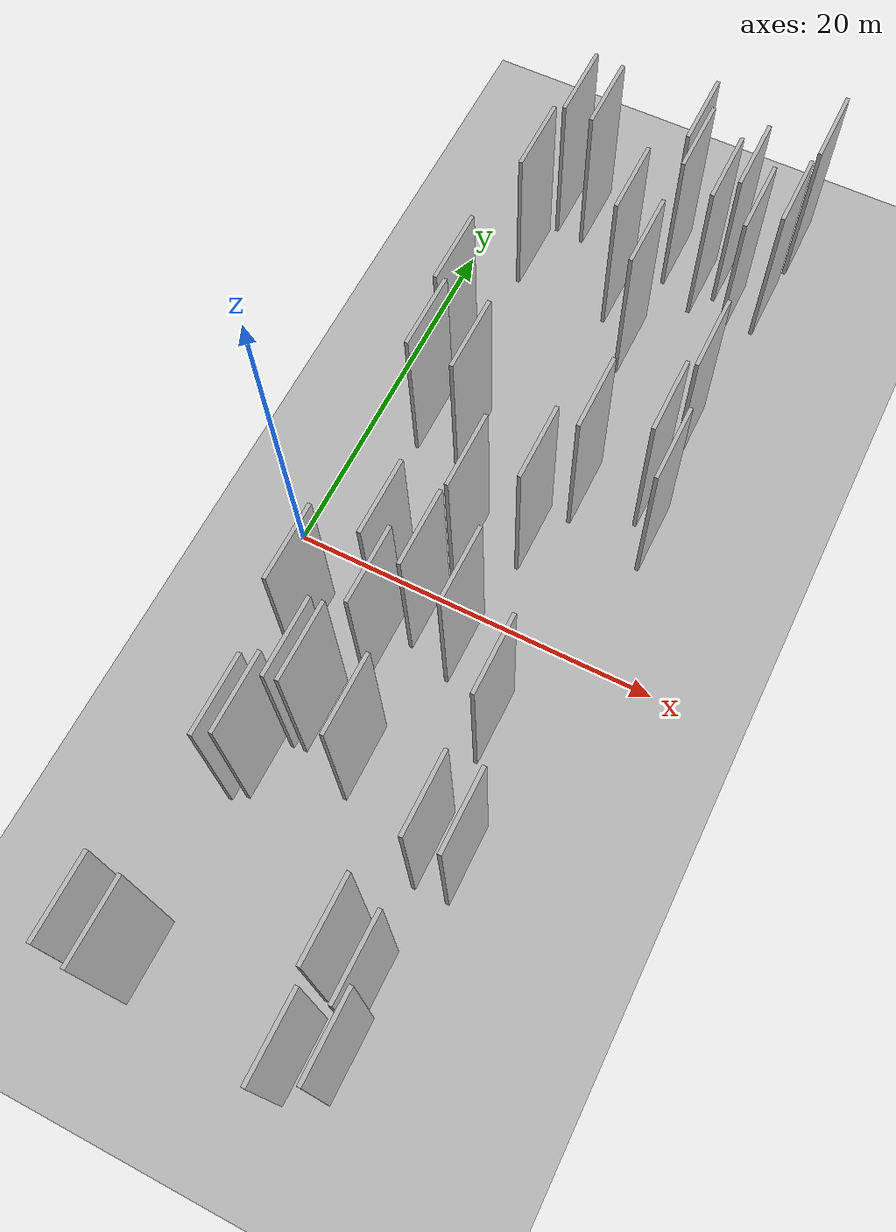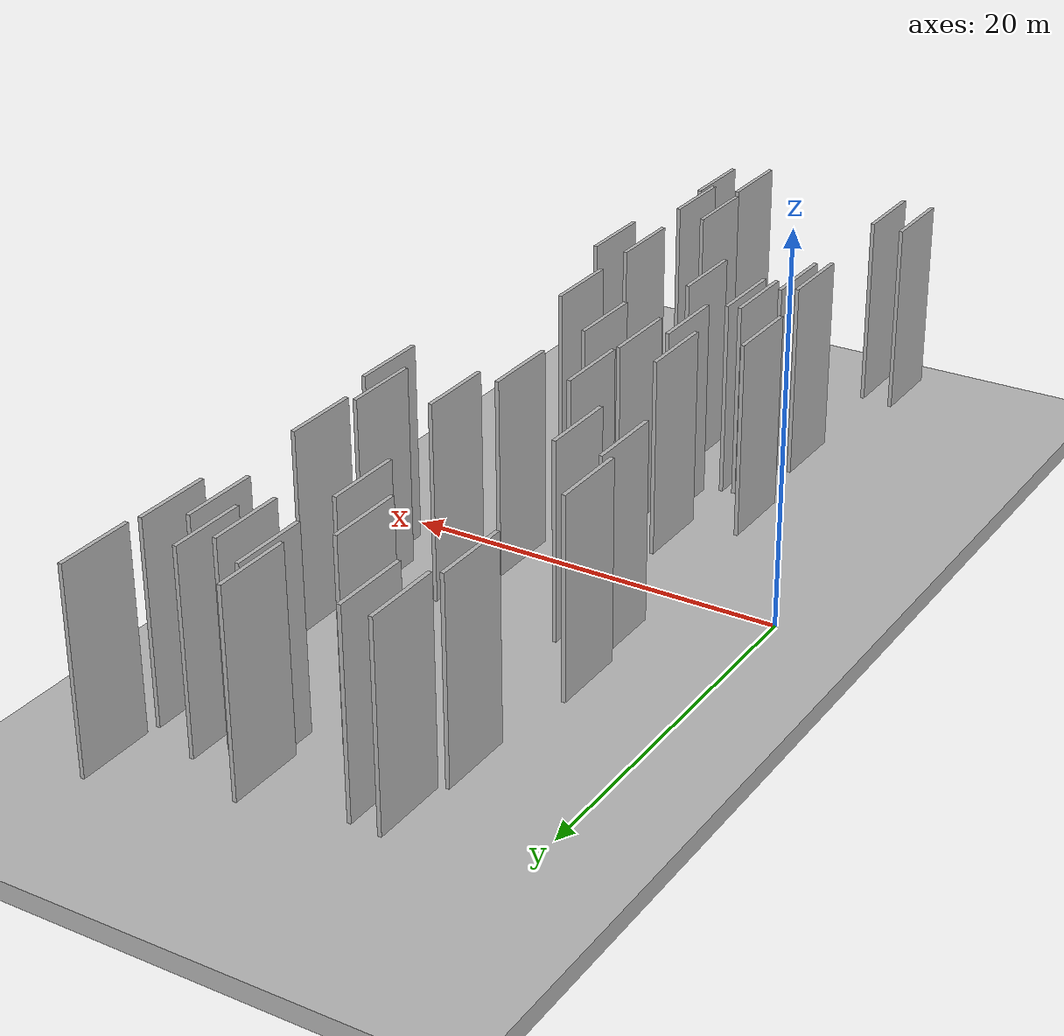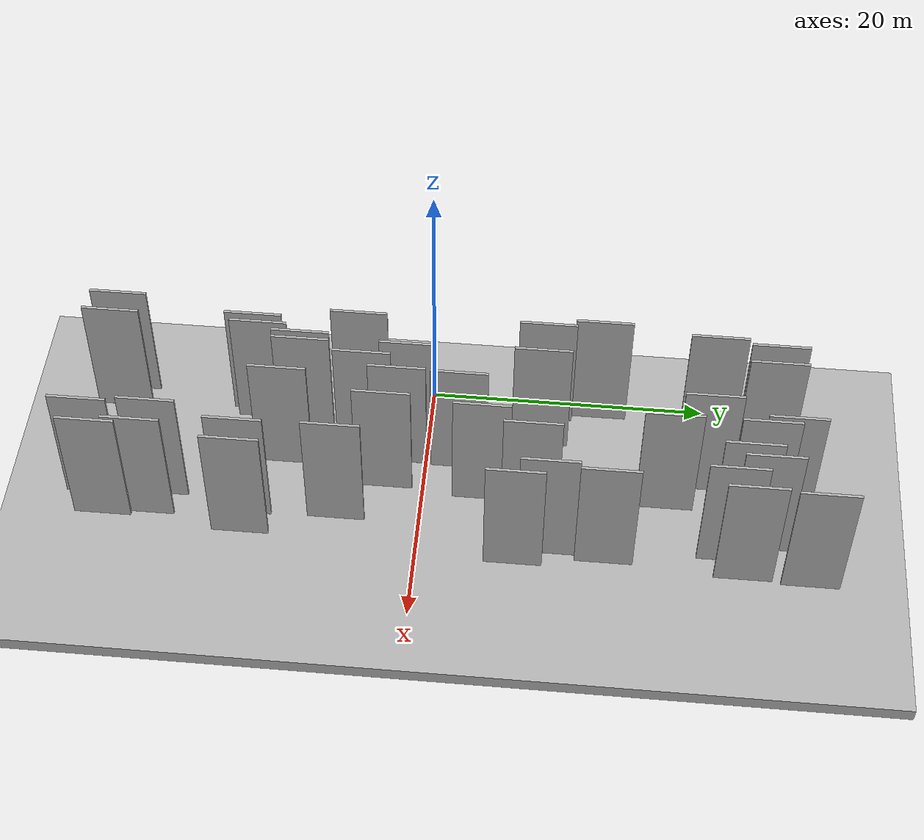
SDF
<?xml version="1.0" encoding="utf-8"?>

<sdf version="1.6">

   <world name="default">

      <gui fullscreen="0">

         <camera name="user_camera">

            <pose>-15 0 4.57585 0 0 0</pose>

            <view_controller>orbit</view_controller>

         </camera>

      </gui>

      <scene>

         <sky>

           <clouds>

             <speed>12</speed>

           </clouds>

         </sky>

         <ambient>0.4 0.4 0.4 1</ambient>

         <background>0.7 0.7 0.7 1</background>

         <shadows>1</shadows>

      </scene>

      <gravity>0 0 -9.8066</gravity>

      <magnetic_field>6e-06 2.3e-05 -4.2e-05</magnetic_field>

      <physics default="0" name="default_physics" type="ode">

         <ode>

            <solver>

               <type>quick</type>

               <iters>10</iters>

               <sor>1.0</sor>

               <use_dynamic_moi_rescaling>0</use_dynamic_moi_rescaling>

            </solver>

            <constraints>

               <cfm>0</cfm>

               <erp>0.2</erp>

               <contact_max_correcting_vel>100</contact_max_correcting_vel>

               <contact_surface_layer>0.001</contact_surface_layer>

            </constraints>

         </ode>

         <max_step_size>0.004</max_step_size>

         <real_time_factor>1</real_time_factor>

         <real_time_update_rate>250</real_time_update_rate>

      </physics>

      <light name="sun" type="directional">

         <cast_shadows>1</cast_shadows>

         <pose>0 0 10 0 0 0</pose>

         <diffuse>0.8 0.8 0.8 1</diffuse>

         <specular>0.2 0.2 0.2 1</specular>

         <attenuation>

            <range>1000</range>

            <constant>0.9</constant>

            <linear>0.01</linear>

            <quadratic>0.001</quadratic>

         </attenuation>

         <direction>-0.5 0.1 -0.9</direction>

      </light>

      <include>

         <name>ground_plane_1</name>

         <uri>model://HANNAS_ground_plane</uri>

         <pose>0 0 0  0 0 0</pose>

      </include>

      <include>

         <name>ground_plane_2</name>

         <uri>model://HANNAS_ground_plane</uri>

         <pose>100 0 0  0 0 0</pose>

      </include>

      <model name="HANNAS_wall_1">

         <static>1</static>

         <pose frame="">5.0184 -22.1735 2.5 0.000000 0.000000 1.570796</pose>

         <link name="link">

            <pose frame="">0 0 5.00 0 0 0</pose>

            <collision name="collision">

               <geometry>

                  <box>

                     <size>4.00 0.2 10.00</size>

                  </box>

               </geometry>

               <max_contacts>10</max_contacts>

               <surface>

                  <contact>

                     <ode/>

                  </contact>

                  <bounce/>

                  <friction>

                     <torsional>

                        <ode/>

                     </torsional>

                     <ode/>

                  </friction>

               </surface>

            </collision>

            <visual name="visual">

               <cast_shadows>0</cast_shadows>

               <geometry>

                  <box>

                     <size>4.00 0.2 10.00</size>

                  </box>

               </geometry>

               <material>

                  <script>

                     <uri>model://HANNAS_wall/materials/scripts</uri>

                     <uri>model://HANNAS_wall/materials/textures</uri>

                     <name>vrc/HANNAS_wall</name>

                  </script>

               </material>

            </visual>

            <self_collide>0</self_collide>

            <enable_wind>0</enable_wind>

            <kinematic>0</kinematic>

         </link>

      </model>

      <model name="HANNAS_wall_2">

         <static>1</static>

         <pose frame="">16.1555 13.1335 2.5 0.000000 0.000000 1.570796</pose>

         <link name="link">

            <pose frame="">0 0 5.00 0 0 0</pose>

            <collision name="collision">

               <geometry>

                  <box>

                     <size>4.00 0.2 10.00</size>

                  </box>

               </geometry>

               <max_contacts>10</max_contacts>

               <surface>

                  <contact>

                     <ode/>

                  </contact>

                  <bounce/>

                  <friction>

                     <torsional>

                        <ode/>

                     </torsional>

                     <ode/>

                  </friction>

               </surface>

            </collision>

            <visual name="visual">

               <cast_shadows>0</cast_shadows>

               <geometry>

                  <box>

                     <size>4.00 0.2 10.00</size>

                  </box>

               </geometry>

               <material>

                  <script>

                     <uri>model://HANNAS_wall/materials/scripts</uri>

                     <uri>model://HANNAS_wall/materials/textures</uri>

                     <name>vrc/HANNAS_wall</name>

                  </script>

               </material>

            </visual>

            <self_collide>0</self_collide>

            <enable_wind>0</enable_wind>

            <kinematic>0</kinematic>

         </link>

      </model>

      <model name="HANNAS_wall_3">

         <static>1</static>

         <pose frame="">3.3256 -21.9479 2.5 0.000000 0.000000 1.570796</pose>

         <link name="link">

            <pose frame="">0 0 5.00 0 0 0</pose>

            <collision name="collision">

               <geometry>

                  <box>

                     <size>4.00 0.2 10.00</size>

                  </box>

               </geometry>

               <max_contacts>10</max_contacts>

               <surface>

                  <contact>

                     <ode/>

                  </contact>

                  <bounce/>

                  <friction>

                     <torsional>

                        <ode/>

                     </torsional>

                     <ode/>

                  </friction>

               </surface>

            </collision>

            <visual name="visual">

               <cast_shadows>0</cast_shadows>

               <geometry>

                  <box>

                     <size>4.00 0.2 10.00</size>

                  </box>

               </geometry>

               <material>

                  <script>

                     <uri>model://HANNAS_wall/materials/scripts</uri>

                     <uri>model://HANNAS_wall/materials/textures</uri>

                     <name>vrc/HANNAS_wall</name>

                  </script>

               </material>

            </visual>

            <self_collide>0</self_collide>

            <enable_wind>0</enable_wind>

            <kinematic>0</kinematic>

         </link>

      </model>

      <model name="HANNAS_wall_4">

         <static>1</static>

         <pose frame="">4.5028 -12.2182 2.5 0.000000 0.000000 1.570796</pose>

         <link name="link">

            <pose frame="">0 0 5.00 0 0 0</pose>

            <collision name="collision">

               <geometry>

                  <box>

                     <size>4.00 0.2 10.00</size>

                  </box>

               </geometry>

               <max_contacts>10</max_contacts>

               <surface>

                  <contact>

                     <ode/>

                  </contact>

                  <bounce/>

                  <friction>

                     <torsional>

                        <ode/>

                     </torsional>

                     <ode/>

                  </friction>

               </surface>

            </collision>

            <visual name="visual">

               <cast_shadows>0</cast_shadows>

               <geometry>

                  <box>

                     <size>4.00 0.2 10.00</size>

                  </box>

               </geometry>

               <material>

                  <script>

                     <uri>model://HANNAS_wall/materials/scripts</uri>

                     <uri>model://HANNAS_wall/materials/textures</uri>

                     <name>vrc/HANNAS_wall</name>

                  </script>

               </material>

            </visual>

            <self_collide>0</self_collide>

            <enable_wind>0</enable_wind>

            <kinematic>0</kinematic>

         </link>

      </model>

      <model name="HANNAS_wall_5">

         <static>1</static>

         <pose frame="">15.0789 -21.8537 2.5 0.000000 0.000000 1.570796</pose>

         <link name="link">

            <pose frame="">0 0 5.00 0 0 0</pose>

            <collision name="collision">

               <geometry>

                  <box>

                     <size>4.00 0.2 10.00</size>

                  </box>

               </geometry>

               <max_contacts>10</max_contacts>

               <surface>

                  <contact>

                     <ode/>

                  </contact>

                  <bounce/>

                  <friction>

                     <torsional>

                        <ode/>

                     </torsional>

                     <ode/>

                  </friction>

               </surface>

            </collision>

            <visual name="visual">

               <cast_shadows>0</cast_shadows>

               <geometry>

                  <box>

                     <size>4.00 0.2 10.00</size>

                  </box>

               </geometry>

               <material>

                  <script>

                     <uri>model://HANNAS_wall/materials/scripts</uri>

                     <uri>model://HANNAS_wall/materials/textures</uri>

                     <name>vrc/HANNAS_wall</name>

                  </script>

               </material>

            </visual>

            <self_collide>0</self_collide>

            <enable_wind>0</enable_wind>

            <kinematic>0</kinematic>

         </link>

      </model>

      <model name="HANNAS_wall_6">

         <static>1</static>

         <pose frame="">11.0372 23.6294 2.5 0.000000 0.000000 1.570796</pose>

         <link name="link">

            <pose frame="">0 0 5.00 0 0 0</pose>

            <collision name="collision">

               <geometry>

                  <box>

                     <size>4.00 0.2 10.00</size>

                  </box>

               </geometry>

               <max_contacts>10</max_contacts>

               <surface>

                  <contact>

                     <ode/>

                  </contact>

                  <bounce/>

                  <friction>

                     <torsional>

                        <ode/>

                     </torsional>

                     <ode/>

                  </friction>

               </surface>

            </collision>

            <visual name="visual">

               <cast_shadows>0</cast_shadows>

               <geometry>

                  <box>

                     <size>4.00 0.2 10.00</size>

                  </box>

               </geometry>

               <material>

                  <script>

                     <uri>model://HANNAS_wall/materials/scripts</uri>

                     <uri>model://HANNAS_wall/materials/textures</uri>

                     <name>vrc/HANNAS_wall</name>

                  </script>

               </material>

            </visual>

            <self_collide>0</self_collide>

            <enable_wind>0</enable_wind>

            <kinematic>0</kinematic>

         </link>

      </model>

      <model name="HANNAS_wall_7">

         <static>1</static>

         <pose frame="">16.6972 22.6465 2.5 0.000000 0.000000 1.570796</pose>

         <link name="link">

            <pose frame="">0 0 5.00 0 0 0</pose>

            <collision name="collision">

               <geometry>

                  <box>

                     <size>4.00 0.2 10.00</size>

                  </box>

               </geometry>

               <max_contacts>10</max_contacts>

               <surface>

                  <contact>

                     <ode/>

                  </contact>

                  <bounce/>

                  <friction>

                     <torsional>

                        <ode/>

                     </torsional>

                     <ode/>

                  </friction>

               </surface>

            </collision>

            <visual name="visual">

               <cast_shadows>0</cast_shadows>

               <geometry>

                  <box>

                     <size>4.00 0.2 10.00</size>

                  </box>

               </geometry>

               <material>

                  <script>

                     <uri>model://HANNAS_wall/materials/scripts</uri>

                     <uri>model://HANNAS_wall/materials/textures</uri>

                     <name>vrc/HANNAS_wall</name>

                  </script>

               </material>

            </visual>

            <self_collide>0</self_collide>

            <enable_wind>0</enable_wind>

            <kinematic>0</kinematic>

         </link>

      </model>

      <model name="HANNAS_wall_8">

         <static>1</static>

         <pose frame="">3.7094 -4.9024 2.5 0.000000 0.000000 1.570796</pose>

         <link name="link">

            <pose frame="">0 0 5.00 0 0 0</pose>

            <collision name="collision">

               <geometry>

                  <box>

                     <size>4.00 0.2 10.00</size>

                  </box>

               </geometry>

               <max_contacts>10</max_contacts>

               <surface>

                  <contact>

                     <ode/>

                  </contact>

                  <bounce/>

                  <friction>

                     <torsional>

                        <ode/>

                     </torsional>

                     <ode/>

                  </friction>

               </surface>

            </collision>

            <visual name="visual">

               <cast_shadows>0</cast_shadows>

               <geometry>

                  <box>

                     <size>4.00 0.2 10.00</size>

                  </box>

               </geometry>

               <material>

                  <script>

                     <uri>model://HANNAS_wall/materials/scripts</uri>

                     <uri>model://HANNAS_wall/materials/textures</uri>

                     <name>vrc/HANNAS_wall</name>

                  </script>

               </material>

            </visual>

            <self_collide>0</self_collide>

            <enable_wind>0</enable_wind>

            <kinematic>0</kinematic>

         </link>

      </model>

      <model name="HANNAS_wall_9">

         <static>1</static>

         <pose frame="">7.3631 -4.2993 2.5 0.000000 0.000000 1.570796</pose>

         <link name="link">

            <pose frame="">0 0 5.00 0 0 0</pose>

            <collision name="collision">

               <geometry>

                  <box>

                     <size>4.00 0.2 10.00</size>

                  </box>

               </geometry>

               <max_contacts>10</max_contacts>

               <surface>

                  <contact>

                     <ode/>

                  </contact>

                  <bounce/>

                  <friction>

                     <torsional>

                        <ode/>

                     </torsional>

                     <ode/>

                  </friction>

               </surface>

            </collision>

            <visual name="visual">

               <cast_shadows>0</cast_shadows>

               <geometry>

                  <box>

                     <size>4.00 0.2 10.00</size>

                  </box>

               </geometry>

               <material>

                  <script>

                     <uri>model://HANNAS_wall/materials/scripts</uri>

                     <uri>model://HANNAS_wall/materials/textures</uri>

                     <name>vrc/HANNAS_wall</name>

                  </script>

               </material>

            </visual>

            <self_collide>0</self_collide>

            <enable_wind>0</enable_wind>

            <kinematic>0</kinematic>

         </link>

      </model>

      <model name="HANNAS_wall_10">

         <static>1</static>

         <pose frame="">15.8072 -12.0592 2.5 0.000000 0.000000 1.570796</pose>

         <link name="link">

            <pose frame="">0 0 5.00 0 0 0</pose>

            <collision name="collision">

               <geometry>

                  <box>

                     <size>4.00 0.2 10.00</size>

                  </box>

               </geometry>

               <max_contacts>10</max_contacts>

               <surface>

                  <contact>

                     <ode/>

                  </contact>

                  <bounce/>

                  <friction>

                     <torsional>

                        <ode/>

                     </torsional>

                     <ode/>

                  </friction>

               </surface>

            </collision>

            <visual name="visual">

               <cast_shadows>0</cast_shadows>

               <geometry>

                  <box>

                     <size>4.00 0.2 10.00</size>

                  </box>

               </geometry>

               <material>

                  <script>

                     <uri>model://HANNAS_wall/materials/scripts</uri>

                     <uri>model://HANNAS_wall/materials/textures</uri>

                     <name>vrc/HANNAS_wall</name>

                  </script>

               </material>

            </visual>

            <self_collide>0</self_collide>

            <enable_wind>0</enable_wind>

            <kinematic>0</kinematic>

         </link>

      </model>

      <model name="HANNAS_wall_11">

         <static>1</static>

         <pose frame="">11.0493 17.1665 2.5 0.000000 0.000000 1.570796</pose>

         <link name="link">

            <pose frame="">0 0 5.00 0 0 0</pose>

            <collision name="collision">

               <geometry>

                  <box>

                     <size>4.00 0.2 10.00</size>

                  </box>

               </geometry>

               <max_contacts>10</max_contacts>

               <surface>

                  <contact>

                     <ode/>

                  </contact>

                  <bounce/>

                  <friction>

                     <torsional>

                        <ode/>

                     </torsional>

                     <ode/>

                  </friction>

               </surface>

            </collision>

            <visual name="visual">

               <cast_shadows>0</cast_shadows>

               <geometry>

                  <box>

                     <size>4.00 0.2 10.00</size>

                  </box>

               </geometry>

               <material>

                  <script>

                     <uri>model://HANNAS_wall/materials/scripts</uri>

                     <uri>model://HANNAS_wall/materials/textures</uri>

                     <name>vrc/HANNAS_wall</name>

                  </script>

               </material>

            </visual>

            <self_collide>0</self_collide>

            <enable_wind>0</enable_wind>

            <kinematic>0</kinematic>

         </link>

      </model>

      <model name="HANNAS_wall_12">

         <static>1</static>

         <pose frame="">13.0608 22.4641 2.5 0.000000 0.000000 1.570796</pose>

         <link name="link">

            <pose frame="">0 0 5.00 0 0 0</pose>

            <collision name="collision">

               <geometry>

                  <box>

                     <size>4.00 0.2 10.00</size>

                  </box>

               </geometry>

               <max_contacts>10</max_contacts>

               <surface>

                  <contact>

                     <ode/>

                  </contact>

                  <bounce/>

                  <friction>

                     <torsional>

                        <ode/>

                     </torsional>

                     <ode/>

                  </friction>

               </surface>

            </collision>

            <visual name="visual">

               <cast_shadows>0</cast_shadows>

               <geometry>

                  <box>

                     <size>4.00 0.2 10.00</size>

                  </box>

               </geometry>

               <material>

                  <script>

                     <uri>model://HANNAS_wall/materials/scripts</uri>

                     <uri>model://HANNAS_wall/materials/textures</uri>

                     <name>vrc/HANNAS_wall</name>

                  </script>

               </material>

            </visual>

            <self_collide>0</self_collide>

            <enable_wind>0</enable_wind>

            <kinematic>0</kinematic>

         </link>

      </model>

      <model name="HANNAS_wall_13">

         <static>1</static>

         <pose frame="">3.7755 20.1655 2.5 0.000000 0.000000 1.570796</pose>

         <link name="link">

            <pose frame="">0 0 5.00 0 0 0</pose>

            <collision name="collision">

               <geometry>

                  <box>

                     <size>4.00 0.2 10.00</size>

                  </box>

               </geometry>

               <max_contacts>10</max_contacts>

               <surface>

                  <contact>

                     <ode/>

                  </contact>

                  <bounce/>

                  <friction>

                     <torsional>

                        <ode/>

                     </torsional>

                     <ode/>

                  </friction>

               </surface>

            </collision>

            <visual name="visual">

               <cast_shadows>0</cast_shadows>

               <geometry>

                  <box>

                     <size>4.00 0.2 10.00</size>

                  </box>

               </geometry>

               <material>

                  <script>

                     <uri>model://HANNAS_wall/materials/scripts</uri>

                     <uri>model://HANNAS_wall/materials/textures</uri>

                     <name>vrc/HANNAS_wall</name>

                  </script>

               </material>

            </visual>

            <self_collide>0</self_collide>

            <enable_wind>0</enable_wind>

            <kinematic>0</kinematic>

         </link>

      </model>

      <model name="HANNAS_wall_14">

         <static>1</static>

         <pose frame="">3.1086 12.2018 2.5 0.000000 0.000000 1.570796</pose>

         <link name="link">

            <pose frame="">0 0 5.00 0 0 0</pose>

            <collision name="collision">

               <geometry>

                  <box>

                     <size>4.00 0.2 10.00</size>

                  </box>

               </geometry>

               <max_contacts>10</max_contacts>

               <surface>

                  <contact>

                     <ode/>

                  </contact>

                  <bounce/>

                  <friction>

                     <torsional>

                        <ode/>

                     </torsional>

                     <ode/>

                  </friction>

               </surface>

            </collision>

            <visual name="visual">

               <cast_shadows>0</cast_shadows>

               <geometry>

                  <box>

                     <size>4.00 0.2 10.00</size>

                  </box>

               </geometry>

               <material>

                  <script>

                     <uri>model://HANNAS_wall/materials/scripts</uri>

                     <uri>model://HANNAS_wall/materials/textures</uri>

                     <name>vrc/HANNAS_wall</name>

                  </script>

               </material>

            </visual>

            <self_collide>0</self_collide>

            <enable_wind>0</enable_wind>

            <kinematic>0</kinematic>

         </link>

      </model>

      <model name="HANNAS_wall_15">

         <static>1</static>

         <pose frame="">12.9526 -18.1699 2.5 0.000000 0.000000 1.570796</pose>

         <link name="link">

            <pose frame="">0 0 5.00 0 0 0</pose>

            <collision name="collision">

               <geometry>

                  <box>

                     <size>4.00 0.2 10.00</size>

                  </box>

               </geometry>

               <max_contacts>10</max_contacts>

               <surface>

                  <contact>

                     <ode/>

                  </contact>

                  <bounce/>

                  <friction>

                     <torsional>

                        <ode/>

                     </torsional>

                     <ode/>

                  </friction>

               </surface>

            </collision>

            <visual name="visual">

               <cast_shadows>0</cast_shadows>

               <geometry>

                  <box>

                     <size>4.00 0.2 10.00</size>

                  </box>

               </geometry>

               <material>

                  <script>

                     <uri>model://HANNAS_wall/materials/scripts</uri>

                     <uri>model://HANNAS_wall/materials/textures</uri>

                     <name>vrc/HANNAS_wall</name>

                  </script>

               </material>

            </visual>

            <self_collide>0</self_collide>

            <enable_wind>0</enable_wind>

            <kinematic>0</kinematic>

         </link>

      </model>

      <model name="HANNAS_wall_16">

         <static>1</static>

         <pose frame="">12.6048 7.8343 2.5 0.000000 0.000000 1.570796</pose>

         <link name="link">

            <pose frame="">0 0 5.00 0 0 0</pose>

            <collision name="collision">

               <geometry>

                  <box>

                     <size>4.00 0.2 10.00</size>

                  </box>

               </geometry>

               <max_contacts>10</max_contacts>

               <surface>

                  <contact>

                     <ode/>

                  </contact>

                  <bounce/>

                  <friction>

                     <torsional>

                        <ode/>

                     </torsional>

                     <ode/>

                  </friction>

               </surface>

            </collision>

            <visual name="visual">

               <cast_shadows>0</cast_shadows>

               <geometry>

                  <box>

                     <size>4.00 0.2 10.00</size>

                  </box>

               </geometry>

               <material>

                  <script>

                     <uri>model://HANNAS_wall/materials/scripts</uri>

                     <uri>model://HANNAS_wall/materials/textures</uri>

                     <name>vrc/HANNAS_wall</name>

                  </script>

               </material>

            </visual>

            <self_collide>0</self_collide>

            <enable_wind>0</enable_wind>

            <kinematic>0</kinematic>

         </link>

      </model>

      <model name="HANNAS_wall_17">

         <static>1</static>

         <pose frame="">5.2063 -11.7776 2.5 0.000000 0.000000 1.570796</pose>

         <link name="link">

            <pose frame="">0 0 5.00 0 0 0</pose>

            <collision name="collision">

               <geometry>

                  <box>

                     <size>4.00 0.2 10.00</size>

                  </box>

               </geometry>

               <max_contacts>10</max_contacts>

               <surface>

                  <contact>

                     <ode/>

                  </contact>

                  <bounce/>

                  <friction>

                     <torsional>

                        <ode/>

                     </torsional>

                     <ode/>

                  </friction>

               </surface>

            </collision>

            <visual name="visual">

               <cast_shadows>0</cast_shadows>

               <geometry>

                  <box>

                     <size>4.00 0.2 10.00</size>

                  </box>

               </geometry>

               <material>

                  <script>

                     <uri>model://HANNAS_wall/materials/scripts</uri>

                     <uri>model://HANNAS_wall/materials/textures</uri>

                     <name>vrc/HANNAS_wall</name>

                  </script>

               </material>

            </visual>

            <self_collide>0</self_collide>

            <enable_wind>0</enable_wind>

            <kinematic>0</kinematic>

         </link>

      </model>

      <model name="HANNAS_wall_18">

         <static>1</static>

         <pose frame="">5.7793 24.1815 2.5 0.000000 0.000000 1.570796</pose>

         <link name="link">

            <pose frame="">0 0 5.00 0 0 0</pose>

            <collision name="collision">

               <geometry>

                  <box>

                     <size>4.00 0.2 10.00</size>

                  </box>

               </geometry>

               <max_contacts>10</max_contacts>

               <surface>

                  <contact>

                     <ode/>

                  </contact>

                  <bounce/>

                  <friction>

                     <torsional>

                        <ode/>

                     </torsional>

                     <ode/>

                  </friction>

               </surface>

            </collision>

            <visual name="visual">

               <cast_shadows>0</cast_shadows>

               <geometry>

                  <box>

                     <size>4.00 0.2 10.00</size>

                  </box>

               </geometry>

               <material>

                  <script>

                     <uri>model://HANNAS_wall/materials/scripts</uri>

                     <uri>model://HANNAS_wall/materials/textures</uri>

                     <name>vrc/HANNAS_wall</name>

                  </script>

               </material>

            </visual>

            <self_collide>0</self_collide>

            <enable_wind>0</enable_wind>

            <kinematic>0</kinematic>

         </link>

      </model>

      <model name="HANNAS_wall_19">

         <static>1</static>

         <pose frame="">10.5703 25.3436 2.5 0.000000 0.000000 1.570796</pose>

         <link name="link">

            <pose frame="">0 0 5.00 0 0 0</pose>

            <collision name="collision">

               <geometry>

                  <box>

                     <size>4.00 0.2 10.00</size>

                  </box>

               </geometry>

               <max_contacts>10</max_contacts>

               <surface>

                  <contact>

                     <ode/>

                  </contact>

                  <bounce/>

                  <friction>

                     <torsional>

                        <ode/>

                     </torsional>

                     <ode/>

                  </friction>

               </surface>

            </collision>

            <visual name="visual">

               <cast_shadows>0</cast_shadows>

               <geometry>

                  <box>

                     <size>4.00 0.2 10.00</size>

                  </box>

               </geometry>

               <material>

                  <script>

                     <uri>model://HANNAS_wall/materials/scripts</uri>

                     <uri>model://HANNAS_wall/materials/textures</uri>

                     <name>vrc/HANNAS_wall</name>

                  </script>

               </material>

            </visual>

            <self_collide>0</self_collide>

            <enable_wind>0</enable_wind>

            <kinematic>0</kinematic>

         </link>

      </model>

      <model name="HANNAS_wall_20">

         <static>1</static>

         <pose frame="">6.0445 8.1218 2.5 0.000000 0.000000 1.570796</pose>

         <link name="link">

            <pose frame="">0 0 5.00 0 0 0</pose>

            <collision name="collision">

               <geometry>

                  <box>

                     <size>4.00 0.2 10.00</size>

                  </box>

               </geometry>

               <max_contacts>10</max_contacts>

               <surface>

                  <contact>

                     <ode/>

                  </contact>

                  <bounce/>

                  <friction>

                     <torsional>

                        <ode/>

                     </torsional>

                     <ode/>

                  </friction>

               </surface>

            </collision>

            <visual name="visual">

               <cast_shadows>0</cast_shadows>

               <geometry>

                  <box>

                     <size>4.00 0.2 10.00</size>

                  </box>

               </geometry>

               <material>

                  <script>

                     <uri>model://HANNAS_wall/materials/scripts</uri>

                     <uri>model://HANNAS_wall/materials/textures</uri>

                     <name>vrc/HANNAS_wall</name>

                  </script>

               </material>

            </visual>

            <self_collide>0</self_collide>

            <enable_wind>0</enable_wind>

            <kinematic>0</kinematic>

         </link>

      </model>

      <model name="HANNAS_wall_21">

         <static>1</static>

         <pose frame="">14.0071 -5.5855 2.5 0.000000 0.000000 1.570796</pose>

         <link name="link">

            <pose frame="">0 0 5.00 0 0 0</pose>

            <collision name="collision">

               <geometry>

                  <box>

                     <size>4.00 0.2 10.00</size>

                  </box>

               </geometry>

               <max_contacts>10</max_contacts>

               <surface>

                  <contact>

                     <ode/>

                  </contact>

                  <bounce/>

                  <friction>

                     <torsional>

                        <ode/>

                     </torsional>

                     <ode/>

                  </friction>

               </surface>

            </collision>

            <visual name="visual">

               <cast_shadows>0</cast_shadows>

               <geometry>

                  <box>

                     <size>4.00 0.2 10.00</size>

                  </box>

               </geometry>

               <material>

                  <script>

                     <uri>model://HANNAS_wall/materials/scripts</uri>

                     <uri>model://HANNAS_wall/materials/textures</uri>

                     <name>vrc/HANNAS_wall</name>

                  </script>

               </material>

            </visual>

            <self_collide>0</self_collide>

            <enable_wind>0</enable_wind>

            <kinematic>0</kinematic>

         </link>

      </model>

      <model name="HANNAS_wall_22">

         <static>1</static>

         <pose frame="">14.7151 -18.8692 2.5 0.000000 0.000000 1.570796</pose>

         <link name="link">

            <pose frame="">0 0 5.00 0 0 0</pose>

            <collision name="collision">

               <geometry>

                  <box>

                     <size>4.00 0.2 10.00</size>

                  </box>

               </geometry>

               <max_contacts>10</max_contacts>

               <surface>

                  <contact>

                     <ode/>

                  </contact>

                  <bounce/>

                  <friction>

                     <torsional>

                        <ode/>

                     </torsional>

                     <ode/>

                  </friction>

               </surface>

            </collision>

            <visual name="visual">

               <cast_shadows>0</cast_shadows>

               <geometry>

                  <box>

                     <size>4.00 0.2 10.00</size>

                  </box>

               </geometry>

               <material>

                  <script>

                     <uri>model://HANNAS_wall/materials/scripts</uri>

                     <uri>model://HANNAS_wall/materials/textures</uri>

                     <name>vrc/HANNAS_wall</name>

                  </script>

               </material>

            </visual>

            <self_collide>0</self_collide>

            <enable_wind>0</enable_wind>

            <kinematic>0</kinematic>

         </link>

      </model>

      <model name="HANNAS_wall_23">

         <static>1</static>

         <pose frame="">5.8464 -8.7371 2.5 0.000000 0.000000 1.570796</pose>

         <link name="link">

            <pose frame="">0 0 5.00 0 0 0</pose>

            <collision name="collision">

               <geometry>

                  <box>

                     <size>4.00 0.2 10.00</size>

                  </box>

               </geometry>

               <max_contacts>10</max_contacts>

               <surface>

                  <contact>

                     <ode/>

                  </contact>

                  <bounce/>

                  <friction>

                     <torsional>

                        <ode/>

                     </torsional>

                     <ode/>

                  </friction>

               </surface>

            </collision>

            <visual name="visual">

               <cast_shadows>0</cast_shadows>

               <geometry>

                  <box>

                     <size>4.00 0.2 10.00</size>

                  </box>

               </geometry>

               <material>

                  <script>

                     <uri>model://HANNAS_wall/materials/scripts</uri>

                     <uri>model://HANNAS_wall/materials/textures</uri>

                     <name>vrc/HANNAS_wall</name>

                  </script>

               </material>

            </visual>

            <self_collide>0</self_collide>

            <enable_wind>0</enable_wind>

            <kinematic>0</kinematic>

         </link>

      </model>

      <model name="HANNAS_wall_24">

         <static>1</static>

         <pose frame="">6.4878 -8.6407 2.5 0.000000 0.000000 1.570796</pose>

         <link name="link">

            <pose frame="">0 0 5.00 0 0 0</pose>

            <collision name="collision">

               <geometry>

                  <box>

                     <size>4.00 0.2 10.00</size>

                  </box>

               </geometry>

               <max_contacts>10</max_contacts>

               <surface>

                  <contact>

                     <ode/>

                  </contact>

                  <bounce/>

                  <friction>

                     <torsional>

                        <ode/>

                     </torsional>

                     <ode/>

                  </friction>

               </surface>

            </collision>

            <visual name="visual">

               <cast_shadows>0</cast_shadows>

               <geometry>

                  <box>

                     <size>4.00 0.2 10.00</size>

                  </box>

               </geometry>

               <material>

                  <script>

                     <uri>model://HANNAS_wall/materials/scripts</uri>

                     <uri>model://HANNAS_wall/materials/textures</uri>

                     <name>vrc/HANNAS_wall</name>

                  </script>

               </material>

            </visual>

            <self_collide>0</self_collide>

            <enable_wind>0</enable_wind>

            <kinematic>0</kinematic>

         </link>

      </model>

      <model name="HANNAS_wall_25">

         <static>1</static>

         <pose frame="">16.8093 6.9412 2.5 0.000000 0.000000 1.570796</pose>

         <link name="link">

            <pose frame="">0 0 5.00 0 0 0</pose>

            <collision name="collision">

               <geometry>

                  <box>

                     <size>4.00 0.2 10.00</size>

                  </box>

               </geometry>

               <max_contacts>10</max_contacts>

               <surface>

                  <contact>

                     <ode/>

                  </contact>

                  <bounce/>

                  <friction>

                     <torsional>

                        <ode/>

                     </torsional>

                     <ode/>

                  </friction>

               </surface>

            </collision>

            <visual name="visual">

               <cast_shadows>0</cast_shadows>

               <geometry>

                  <box>

                     <size>4.00 0.2 10.00</size>

                  </box>

               </geometry>

               <material>

                  <script>

                     <uri>model://HANNAS_wall/materials/scripts</uri>

                     <uri>model://HANNAS_wall/materials/textures</uri>

                     <name>vrc/HANNAS_wall</name>

                  </script>

               </material>

            </visual>

            <self_collide>0</self_collide>

            <enable_wind>0</enable_wind>

            <kinematic>0</kinematic>

         </link>

      </model>

      <model name="HANNAS_wall_26">

         <static>1</static>

         <pose frame="">11.3477 4.3283 2.5 0.000000 0.000000 1.570796</pose>

         <link name="link">

            <pose frame="">0 0 5.00 0 0 0</pose>

            <collision name="collision">

               <geometry>

                  <box>

                     <size>4.00 0.2 10.00</size>

                  </box>

               </geometry>

               <max_contacts>10</max_contacts>

               <surface>

                  <contact>

                     <ode/>

                  </contact>

                  <bounce/>

                  <friction>

                     <torsional>

                        <ode/>

                     </torsional>

                     <ode/>

                  </friction>

               </surface>

            </collision>

            <visual name="visual">

               <cast_shadows>0</cast_shadows>

               <geometry>

                  <box>

                     <size>4.00 0.2 10.00</size>

                  </box>

               </geometry>

               <material>

                  <script>

                     <uri>model://HANNAS_wall/materials/scripts</uri>

                     <uri>model://HANNAS_wall/materials/textures</uri>

                     <name>vrc/HANNAS_wall</name>

                  </script>

               </material>

            </visual>

            <self_collide>0</self_collide>

            <enable_wind>0</enable_wind>

            <kinematic>0</kinematic>

         </link>

      </model>

      <model name="HANNAS_wall_27">

         <static>1</static>

         <pose frame="">8.6425 2.5450 2.5 0.000000 0.000000 1.570796</pose>

         <link name="link">

            <pose frame="">0 0 5.00 0 0 0</pose>

            <collision name="collision">

               <geometry>

                  <box>

                     <size>4.00 0.2 10.00</size>

                  </box>

               </geometry>

               <max_contacts>10</max_contacts>

               <surface>

                  <contact>

                     <ode/>

                  </contact>

                  <bounce/>

                  <friction>

                     <torsional>

                        <ode/>

                     </torsional>

                     <ode/>

                  </friction>

               </surface>

            </collision>

            <visual name="visual">

               <cast_shadows>0</cast_shadows>

               <geometry>

                  <box>

                     <size>4.00 0.2 10.00</size>

                  </box>

               </geometry>

               <material>

                  <script>

                     <uri>model://HANNAS_wall/materials/scripts</uri>

                     <uri>model://HANNAS_wall/materials/textures</uri>

                     <name>vrc/HANNAS_wall</name>

                  </script>

               </material>

            </visual>

            <self_collide>0</self_collide>

            <enable_wind>0</enable_wind>

            <kinematic>0</kinematic>

         </link>

      </model>

      <model name="HANNAS_wall_28">

         <static>1</static>

         <pose frame="">4.2374 24.2986 2.5 0.000000 0.000000 1.570796</pose>

         <link name="link">

            <pose frame="">0 0 5.00 0 0 0</pose>

            <collision name="collision">

               <geometry>

                  <box>

                     <size>4.00 0.2 10.00</size>

                  </box>

               </geometry>

               <max_contacts>10</max_contacts>

               <surface>

                  <contact>

                     <ode/>

                  </contact>

                  <bounce/>

                  <friction>

                     <torsional>

                        <ode/>

                     </torsional>

                     <ode/>

                  </friction>

               </surface>

            </collision>

            <visual name="visual">

               <cast_shadows>0</cast_shadows>

               <geometry>

                  <box>

                     <size>4.00 0.2 10.00</size>

                  </box>

               </geometry>

               <material>

                  <script>

                     <uri>model://HANNAS_wall/materials/scripts</uri>

                     <uri>model://HANNAS_wall/materials/textures</uri>

                     <name>vrc/HANNAS_wall</name>

                  </script>

               </material>

            </visual>

            <self_collide>0</self_collide>

            <enable_wind>0</enable_wind>

            <kinematic>0</kinematic>

         </link>

      </model>

      <model name="HANNAS_wall_29">

         <static>1</static>

         <pose frame="">3.6104 8.3270 2.5 0.000000 0.000000 1.570796</pose>

         <link name="link">

            <pose frame="">0 0 5.00 0 0 0</pose>

            <collision name="collision">

               <geometry>

                  <box>

                     <size>4.00 0.2 10.00</size>

                  </box>

               </geometry>

               <max_contacts>10</max_contacts>

               <surface>

                  <contact>

                     <ode/>

                  </contact>

                  <bounce/>

                  <friction>

                     <torsional>

                        <ode/>

                     </torsional>

                     <ode/>

                  </friction>

               </surface>

            </collision>

            <visual name="visual">

               <cast_shadows>0</cast_shadows>

               <geometry>

                  <box>

                     <size>4.00 0.2 10.00</size>

                  </box>

               </geometry>

               <material>

                  <script>

                     <uri>model://HANNAS_wall/materials/scripts</uri>

                     <uri>model://HANNAS_wall/materials/textures</uri>

                     <name>vrc/HANNAS_wall</name>

                  </script>

               </material>

            </visual>

            <self_collide>0</self_collide>

            <enable_wind>0</enable_wind>

            <kinematic>0</kinematic>

         </link>

      </model>

      <model name="HANNAS_wall_30">

         <static>1</static>

         <pose frame="">13.2623 -22.7795 2.5 0.000000 0.000000 1.570796</pose>

         <link name="link">

            <pose frame="">0 0 5.00 0 0 0</pose>

            <collision name="collision">

               <geometry>

                  <box>

                     <size>4.00 0.2 10.00</size>

                  </box>

               </geometry>

               <max_contacts>10</max_contacts>

               <surface>

                  <contact>

                     <ode/>

                  </contact>

                  <bounce/>

                  <friction>

                     <torsional>

                        <ode/>

                     </torsional>

                     <ode/>

                  </friction>

               </surface>

            </collision>

            <visual name="visual">

               <cast_shadows>0</cast_shadows>

               <geometry>

                  <box>

                     <size>4.00 0.2 10.00</size>

                  </box>

               </geometry>

               <material>

                  <script>

                     <uri>model://HANNAS_wall/materials/scripts</uri>

                     <uri>model://HANNAS_wall/materials/textures</uri>

                     <name>vrc/HANNAS_wall</name>

                  </script>

               </material>

            </visual>

            <self_collide>0</self_collide>

            <enable_wind>0</enable_wind>

            <kinematic>0</kinematic>

         </link>

      </model>

      <model name="HANNAS_wall_31">

         <static>1</static>

         <pose frame="">13.9977 23.7902 2.5 0.000000 0.000000 1.570796</pose>

         <link name="link">

            <pose frame="">0 0 5.00 0 0 0</pose>

            <collision name="collision">

               <geometry>

                  <box>

                     <size>4.00 0.2 10.00</size>

                  </box>

               </geometry>

               <max_contacts>10</max_contacts>

               <surface>

                  <contact>

                     <ode/>

                  </contact>

                  <bounce/>

                  <friction>

                     <torsional>

                        <ode/>

                     </torsional>

                     <ode/>

                  </friction>

               </surface>

            </collision>

            <visual name="visual">

               <cast_shadows>0</cast_shadows>

               <geometry>

                  <box>

                     <size>4.00 0.2 10.00</size>

                  </box>

               </geometry>

               <material>

                  <script>

                     <uri>model://HANNAS_wall/materials/scripts</uri>

                     <uri>model://HANNAS_wall/materials/textures</uri>

                     <name>vrc/HANNAS_wall</name>

                  </script>

               </material>

            </visual>

            <self_collide>0</self_collide>

            <enable_wind>0</enable_wind>

            <kinematic>0</kinematic>

         </link>

      </model>

      <model name="HANNAS_wall_32">

         <static>1</static>

         <pose frame="">10.8995 -2.5622 2.5 0.000000 0.000000 1.570796</pose>

         <link name="link">

            <pose frame="">0 0 5.00 0 0 0</pose>

            <collision name="collision">

               <geometry>

                  <box>

                     <size>4.00 0.2 10.00</size>

                  </box>

               </geometry>

               <max_contacts>10</max_contacts>

               <surface>

                  <contact>

                     <ode/>

                  </contact>

                  <bounce/>

                  <friction>

                     <torsional>

                        <ode/>

                     </torsional>

                     <ode/>

                  </friction>

               </surface>

            </collision>

            <visual name="visual">

               <cast_shadows>0</cast_shadows>

               <geometry>

                  <box>

                     <size>4.00 0.2 10.00</size>

                  </box>

               </geometry>

               <material>

                  <script>

                     <uri>model://HANNAS_wall/materials/scripts</uri>

                     <uri>model://HANNAS_wall/materials/textures</uri>

                     <name>vrc/HANNAS_wall</name>

                  </script>

               </material>

            </visual>

            <self_collide>0</self_collide>

            <enable_wind>0</enable_wind>

            <kinematic>0</kinematic>

         </link>

      </model>

      <model name="HANNAS_wall_33">

         <static>1</static>

         <pose frame="">14.1095 -12.1084 2.5 0.000000 0.000000 1.570796</pose>

         <link name="link">

            <pose frame="">0 0 5.00 0 0 0</pose>

            <collision name="collision">

               <geometry>

                  <box>

                     <size>4.00 0.2 10.00</size>

                  </box>

               </geometry>

               <max_contacts>10</max_contacts>

               <surface>

                  <contact>

                     <ode/>

                  </contact>

                  <bounce/>

                  <friction>

                     <torsional>

                        <ode/>

                     </torsional>

                     <ode/>

                  </friction>

               </surface>

            </collision>

            <visual name="visual">

               <cast_shadows>0</cast_shadows>

               <geometry>

                  <box>

                     <size>4.00 0.2 10.00</size>

                  </box>

               </geometry>

               <material>

                  <script>

                     <uri>model://HANNAS_wall/materials/scripts</uri>

                     <uri>model://HANNAS_wall/materials/textures</uri>

                     <name>vrc/HANNAS_wall</name>

                  </script>

               </material>

            </visual>

            <self_collide>0</self_collide>

            <enable_wind>0</enable_wind>

            <kinematic>0</kinematic>

         </link>

      </model>

      <model name="HANNAS_wall_34">

         <static>1</static>

         <pose frame="">16.8894 27.2148 2.5 0.000000 0.000000 1.570796</pose>

         <link name="link">

            <pose frame="">0 0 5.00 0 0 0</pose>

            <collision name="collision">

               <geometry>

                  <box>

                     <size>4.00 0.2 10.00</size>

                  </box>

               </geometry>

               <max_contacts>10</max_contacts>

               <surface>

                  <contact>

                     <ode/>

                  </contact>

                  <bounce/>

                  <friction>

                     <torsional>

                        <ode/>

                     </torsional>

                     <ode/>

                  </friction>

               </surface>

            </collision>

            <visual name="visual">

               <cast_shadows>0</cast_shadows>

               <geometry>

                  <box>

                     <size>4.00 0.2 10.00</size>

                  </box>

               </geometry>

               <material>

                  <script>

                     <uri>model://HANNAS_wall/materials/scripts</uri>

                     <uri>model://HANNAS_wall/materials/textures</uri>

                     <name>vrc/HANNAS_wall</name>

                  </script>

               </material>

            </visual>

            <self_collide>0</self_collide>

            <enable_wind>0</enable_wind>

            <kinematic>0</kinematic>

         </link>

      </model>

      <model name="HANNAS_wall_35">

         <static>1</static>

         <pose frame="">6.2977 -1.2036 2.5 0.000000 0.000000 1.570796</pose>

         <link name="link">

            <pose frame="">0 0 5.00 0 0 0</pose>

            <collision name="collision">

               <geometry>

                  <box>

                     <size>4.00 0.2 10.00</size>

                  </box>

               </geometry>

               <max_contacts>10</max_contacts>

               <surface>

                  <contact>

                     <ode/>

                  </contact>

                  <bounce/>

                  <friction>

                     <torsional>

                        <ode/>

                     </torsional>

                     <ode/>

                  </friction>

               </surface>

            </collision>

            <visual name="visual">

               <cast_shadows>0</cast_shadows>

               <geometry>

                  <box>

                     <size>4.00 0.2 10.00</size>

                  </box>

               </geometry>

               <material>

                  <script>

                     <uri>model://HANNAS_wall/materials/scripts</uri>

                     <uri>model://HANNAS_wall/materials/textures</uri>

                     <name>vrc/HANNAS_wall</name>

                  </script>

               </material>

            </visual>

            <self_collide>0</self_collide>

            <enable_wind>0</enable_wind>

            <kinematic>0</kinematic>

         </link>

      </model>

      <model name="HANNAS_wall_36">

         <static>1</static>

         <pose frame="">15.7059 9.1697 2.5 0.000000 0.000000 1.570796</pose>

         <link name="link">

            <pose frame="">0 0 5.00 0 0 0</pose>

            <collision name="collision">

               <geometry>

                  <box>

                     <size>4.00 0.2 10.00</size>

                  </box>

               </geometry>

               <max_contacts>10</max_contacts>

               <surface>

                  <contact>

                     <ode/>

                  </contact>

                  <bounce/>

                  <friction>

                     <torsional>

                        <ode/>

                     </torsional>

                     <ode/>

                  </friction>

               </surface>

            </collision>

            <visual name="visual">

               <cast_shadows>0</cast_shadows>

               <geometry>

                  <box>

                     <size>4.00 0.2 10.00</size>

                  </box>

               </geometry>

               <material>

                  <script>

                     <uri>model://HANNAS_wall/materials/scripts</uri>

                     <uri>model://HANNAS_wall/materials/textures</uri>

                     <name>vrc/HANNAS_wall</name>

                  </script>

               </material>

            </visual>

            <self_collide>0</self_collide>

            <enable_wind>0</enable_wind>

            <kinematic>0</kinematic>

         </link>

      </model>

      <model name="HANNAS_wall_37">

         <static>1</static>

         <pose frame="">9.1006 19.8234 2.5 0.000000 0.000000 1.570796</pose>

         <link name="link">

            <pose frame="">0 0 5.00 0 0 0</pose>

            <collision name="collision">

               <geometry>

                  <box>

                     <size>4.00 0.2 10.00</size>

                  </box>

               </geometry>

               <max_contacts>10</max_contacts>

               <surface>

                  <contact>

                     <ode/>

                  </contact>

                  <bounce/>

                  <friction>

                     <torsional>

                        <ode/>

                     </torsional>

                     <ode/>

                  </friction>

               </surface>

            </collision>

            <visual name="visual">

               <cast_shadows>0</cast_shadows>

               <geometry>

                  <box>

                     <size>4.00 0.2 10.00</size>

                  </box>

               </geometry>

               <material>

                  <script>

                     <uri>model://HANNAS_wall/materials/scripts</uri>

                     <uri>model://HANNAS_wall/materials/textures</uri>

                     <name>vrc/HANNAS_wall</name>

                  </script>

               </material>

            </visual>

            <self_collide>0</self_collide>

            <enable_wind>0</enable_wind>

            <kinematic>0</kinematic>

         </link>

      </model>

      <model name="HANNAS_wall_38">

         <static>1</static>

         <pose frame="">8.5445 -1.7581 2.5 0.000000 0.000000 1.570796</pose>

         <link name="link">

            <pose frame="">0 0 5.00 0 0 0</pose>

            <collision name="collision">

               <geometry>

                  <box>

                     <size>4.00 0.2 10.00</size>

                  </box>

               </geometry>

               <max_contacts>10</max_contacts>

               <surface>

                  <contact>

                     <ode/>

                  </contact>

                  <bounce/>

                  <friction>

                     <torsional>

                        <ode/>

                     </torsional>

                     <ode/>

                  </friction>

               </surface>

            </collision>

            <visual name="visual">

               <cast_shadows>0</cast_shadows>

               <geometry>

                  <box>

                     <size>4.00 0.2 10.00</size>

                  </box>

               </geometry>

               <material>

                  <script>

                     <uri>model://HANNAS_wall/materials/scripts</uri>

                     <uri>model://HANNAS_wall/materials/textures</uri>

                     <name>vrc/HANNAS_wall</name>

                  </script>

               </material>

            </visual>

            <self_collide>0</self_collide>

            <enable_wind>0</enable_wind>

            <kinematic>0</kinematic>

         </link>

      </model>

      <model name="HANNAS_wall_39">

         <static>1</static>

         <pose frame="">9.3000 -9.8569 2.5 0.000000 0.000000 1.570796</pose>

         <link name="link">

            <pose frame="">0 0 5.00 0 0 0</pose>

            <collision name="collision">

               <geometry>

                  <box>

                     <size>4.00 0.2 10.00</size>

                  </box>

               </geometry>

               <max_contacts>10</max_contacts>

               <surface>

                  <contact>

                     <ode/>

                  </contact>

                  <bounce/>

                  <friction>

                     <torsional>

                        <ode/>

                     </torsional>

                     <ode/>

                  </friction>

               </surface>

            </collision>

            <visual name="visual">

               <cast_shadows>0</cast_shadows>

               <geometry>

                  <box>

                     <size>4.00 0.2 10.00</size>

                  </box>

               </geometry>

               <material>

                  <script>

                     <uri>model://HANNAS_wall/materials/scripts</uri>

                     <uri>model://HANNAS_wall/materials/textures</uri>

                     <name>vrc/HANNAS_wall</name>

                  </script>

               </material>

            </visual>

            <self_collide>0</self_collide>

            <enable_wind>0</enable_wind>

            <kinematic>0</kinematic>

         </link>

      </model>

      <model name="HANNAS_wall_40">

         <static>1</static>

         <pose frame="">15.1915 21.4645 2.5 0.000000 0.000000 1.570796</pose>

         <link name="link">

            <pose frame="">0 0 5.00 0 0 0</pose>

            <collision name="collision">

               <geometry>

                  <box>

                     <size>4.00 0.2 10.00</size>

                  </box>

               </geometry>

               <max_contacts>10</max_contacts>

               <surface>

                  <contact>

                     <ode/>

                  </contact>

                  <bounce/>

                  <friction>

                     <torsional>

                        <ode/>

                     </torsional>

                     <ode/>

                  </friction>

               </surface>

            </collision>

            <visual name="visual">

               <cast_shadows>0</cast_shadows>

               <geometry>

                  <box>

                     <size>4.00 0.2 10.00</size>

                  </box>

               </geometry>

               <material>

                  <script>

                     <uri>model://HANNAS_wall/materials/scripts</uri>

                     <uri>model://HANNAS_wall/materials/textures</uri>

                     <name>vrc/HANNAS_wall</name>

                  </script>

               </material>

            </visual>

            <self_collide>0</self_collide>

            <enable_wind>0</enable_wind>

            <kinematic>0</kinematic>

         </link>

      </model>

   </world>

</sdf>
